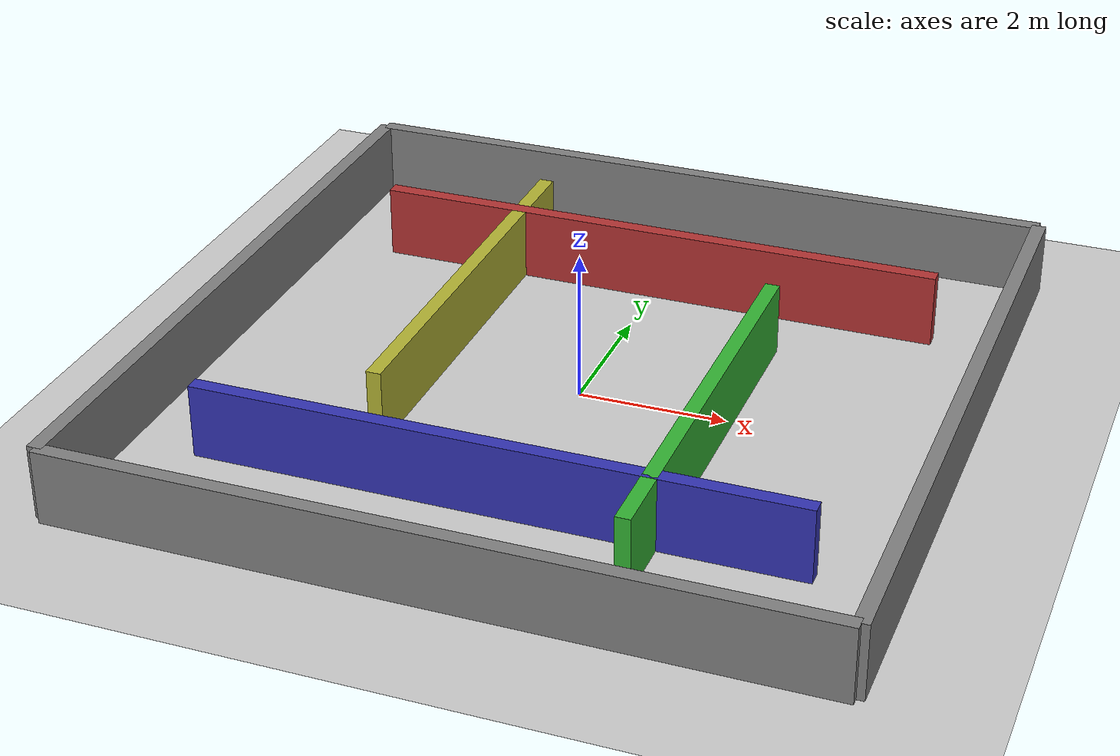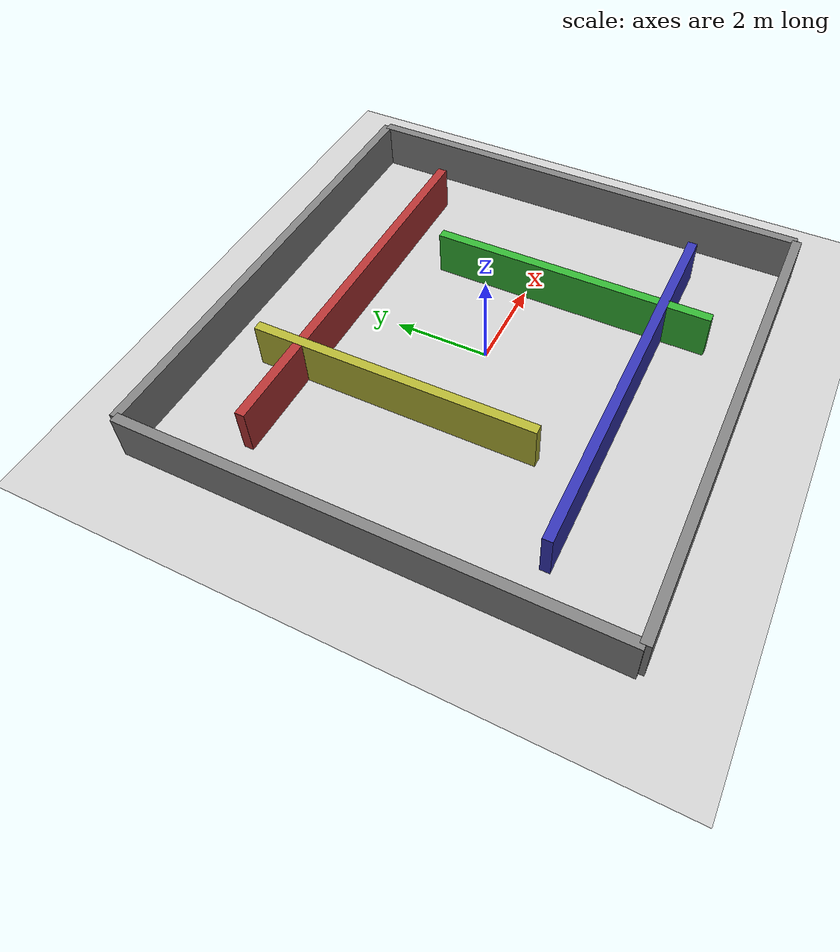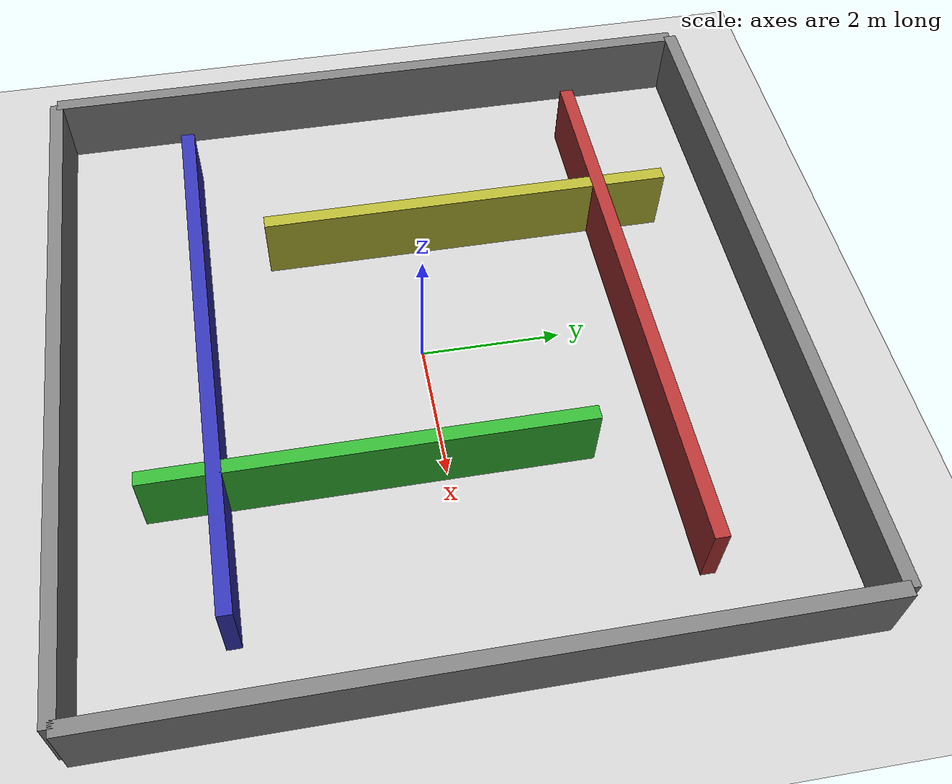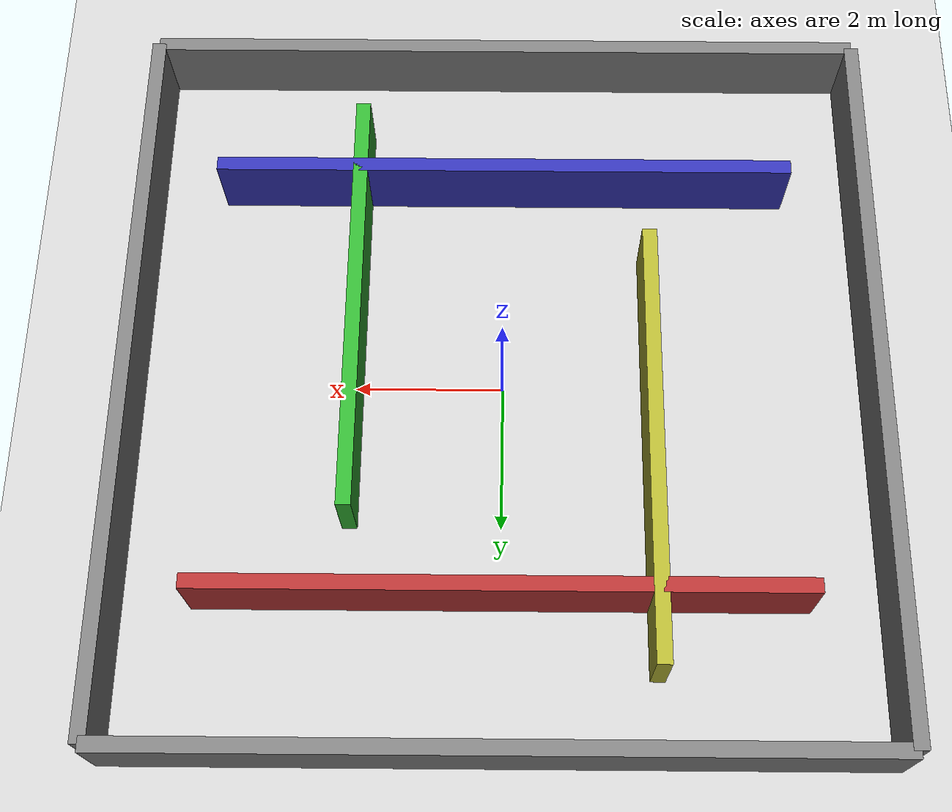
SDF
<?xml version="1.0" ?>
<sdf version="1.6">
  <world name="complex_maze">

    <include>
      <uri>model://ground_plane</uri>
    </include>
    <include>
      <uri>model://sun</uri>
    </include>

    <model name="wall_north">
      <static>true</static>
      <link name="north_link">
        <collision name="north_collision">
          <geometry>
            <box><size>10 0.2 1</size></box>
          </geometry>
        </collision>
        <visual name="north_visual">
          <geometry>
            <box><size>10 0.2 1</size></box>
          </geometry>
          <material><ambient>0.5 0.5 0.5 1</ambient></material>
        </visual>
      </link>
      <pose>0 5 0.5 0 0 0</pose>
    </model>

    <model name="wall_south">
      <static>true</static>
      <link name="south_link">
        <collision name="south_collision">
          <geometry>
            <box><size>10 0.2 1</size></box>
          </geometry>
        </collision>
        <visual name="south_visual">
          <geometry>
            <box><size>10 0.2 1</size></box>
          </geometry>
          <material><ambient>0.5 0.5 0.5 1</ambient></material>
        </visual>
      </link>
      <pose>0 -5 0.5 0 0 0</pose>
    </model>

    <model name="wall_east">
      <static>true</static>
      <link name="east_link">
        <collision name="east_collision">
          <geometry>
            <box><size>0.2 10 1</size></box>
          </geometry>
        </collision>
        <visual name="east_visual">
          <geometry>
            <box><size>0.2 10 1</size></box>
          </geometry>
          <material><ambient>0.5 0.5 0.5 1</ambient></material>
        </visual>
      </link>
      <pose>5 0 0.5 0 0 0</pose>
    </model>

    <model name="wall_west">
      <static>true</static>
      <link name="west_link">
        <collision name="west_collision">
          <geometry>
            <box><size>0.2 10 1</size></box>
          </geometry>
        </collision>
        <visual name="west_visual">
          <geometry>
            <box><size>0.2 10 1</size></box>
          </geometry>
          <material><ambient>0.5 0.5 0.5 1</ambient></material>
        </visual>
      </link>
      <pose>-5 0 0.5 0 0 0</pose>
    </model>

    <model name="int_wall1">
      <static>true</static>
      <link name="iw1_link">
        <collision name="iw1_collision">
          <geometry>
            <box><size>8 0.2 1</size></box>
          </geometry>
        </collision>
        <visual name="iw1_visual">
          <geometry>
            <box><size>8 0.2 1</size></box>
          </geometry>
          <material><ambient>0.7 0.2 0.2 1</ambient></material>
        </visual>
      </link>
      <pose>0 3 0.5 0 0 0</pose>
    </model>

    <model name="int_wall2">
      <static>true</static>
      <link name="iw2_link">
        <collision name="iw2_collision">
          <geometry>
            <box><size>0.2 6 1</size></box>
          </geometry>
        </collision>
        <visual name="iw2_visual">
          <geometry>
            <box><size>0.2 6 1</size></box>
          </geometry>
          <material><ambient>0.2 0.7 0.2 1</ambient></material>
        </visual>
      </link>
      <pose>2 -1 0.5 0 0 0</pose>
    </model>

    <model name="int_wall3">
      <static>true</static>
      <link name="iw3_link">
        <collision name="iw3_collision">
          <geometry>
            <box><size>8 0.2 1</size></box>
          </geometry>
        </collision>
        <visual name="iw3_visual">
          <geometry>
            <box><size>8 0.2 1</size></box>
          </geometry>
          <material><ambient>0.2 0.2 0.7 1</ambient></material>
        </visual>
      </link>
      <pose>0 -3 0.5 0 0 0</pose>
    </model>

    <model name="int_wall4">
      <static>true</static>
      <link name="iw4_link">
        <collision name="iw4_collision">
          <geometry>
            <box><size>0.2 6 1</size></box>
          </geometry>
        </collision>
        <visual name="iw4_visual">
          <geometry>
            <box><size>0.2 6 1</size></box>
          </geometry>
          <material><ambient>0.7 0.7 0.2 1</ambient></material>
        </visual>
      </link>
      <pose>-2 1 0.5 0 0 0</pose>
    </model>

  </world>
</sdf>
